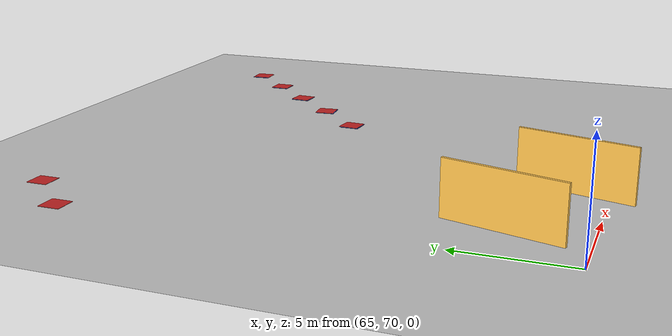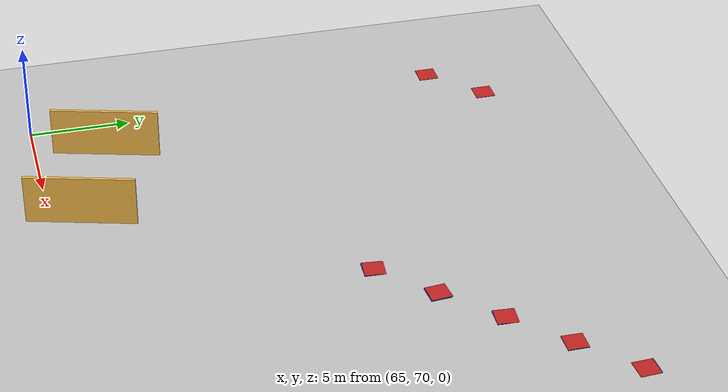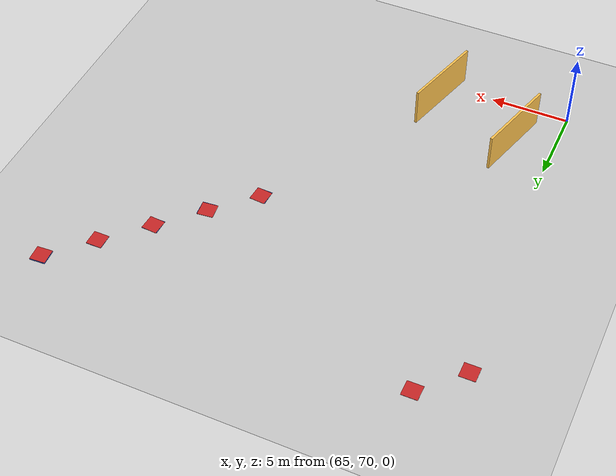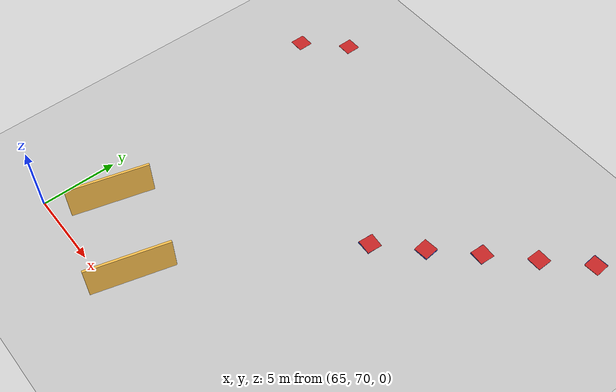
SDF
<sdf version="1.6">
 <world name="default">
  <model name="ground_plane">
   <pose>50 50 0 0 -0 0</pose>
   <static>1</static>
   <link name="link">
    <collision name="collision">
     <geometry><plane><normal>0 0 1</normal><size>100 100</size></plane></geometry>
     <surface><friction><ode><mu>100</mu><mu2>50</mu2></ode></friction></surface>
    </collision>
    <visual name="visual">
     <cast_shadows>0</cast_shadows>
     <geometry><plane><normal>0 0 1</normal><size>100 100</size></plane></geometry>
     <material>
      <script><uri>file://media/materials/scripts/gazebo.material</uri><name>Gazebo/Grey</name></script>
     </material>
    </visual>
   </link>
  </model>
  <model name="T2_0">
   <pose>73.1 71.5 0 0 -0 0</pose>
   <link name="Wall_4">
    <collision name="Wall_4_Collision">
     <geometry><box><size>5.34501 0.15 2.5</size></box></geometry>
     <pose>0 0 1.25 0 -0 0</pose>
    </collision>
    <visual name="Wall_4_Visual">
     <pose>0 0 1.25 0 -0 0</pose>
     <geometry><box><size>5.34501 0.15 2.5</size></box></geometry>
     <material>
      <script><uri>file://media/materials/scripts/gazebo.material</uri><name>Gazebo/Grey</name></script>
      <ambient>1 0.764706 0.305882 1</ambient>
     </material>
    </visual>
    <pose>0 0 0 0 -0 1.29593</pose>
   </link>
   <static>1</static>
  </model>
  <model name="T2_1">
   <pose>67.53 73.5 0 0 -0 0</pose>
   <link name="Wall_4">
    <collision name="Wall_4_Collision">
     <geometry><box><size>5.34501 0.15 2.5</size></box></geometry>
     <pose>0 0 1.25 0 -0 0</pose>
    </collision>
    <visual name="Wall_4_Visual">
     <pose>0 0 1.25 0 -0 0</pose>
     <geometry><box><size>5.34501 0.15 2.5</size></box></geometry>
     <material>
      <script><uri>file://media/materials/scripts/gazebo.material</uri><name>Gazebo/Grey</name></script>
      <ambient>1 0.764706 0.305882 1</ambient>
     </material>
    </visual>
    <pose>0 0 0 0 -0 1.29593</pose>
   </link>
   <static>1</static>
  </model>
  <model name="my_objectg2w1">
   <link name="my_box">
    <inertial>
     <mass>1</mass>
     <inertia><ixx>1</ixx><ixy>0</ixy><ixz>0</ixz><iyy>100</iyy><iyz>0</iyz><izz>1</izz></inertia>
    </inertial>
    <collision name="my_box_collision">
     <pose>0 0 1 0 -0 0</pose>
     <geometry><box><size>1 1 0.02</size></box></geometry>
    </collision>
    <visual name="my_box_visual">
     <pose>0 0 1 0 -0 0</pose>
     <geometry><box><size>1 1 0.02</size></box></geometry>
     <material>
      <script><name>Gazebo/Blue</name><uri>file://media/materials/scripts/gazebo.material</uri></script>
     </material>
    </visual>
   </link>
   <pose>79.9853 83.9873 -0.989999 0 -2e-06 -0.038946</pose>
  </model>
  <model name="my_objectg2w2">
   <link name="my_box">
    <inertial>
     <mass>1</mass>
     <inertia><ixx>1</ixx><ixy>0</ixy><ixz>0</ixz><iyy>100</iyy><iyz>0</iyz><izz>1</izz></inertia>
    </inertial>
    <collision name="my_box_collision">
     <pose>0 0 1 0 -0 0</pose>
     <geometry><box><size>1 1 0.02</size></box></geometry>
    </collision>
    <visual name="my_box_visual">
     <pose>0 0 1 0 -0 0</pose>
     <geometry><box><size>1 1 0.02</size></box></geometry>
     <material>
      <script><name>Gazebo/Blue</name><uri>file://media/materials/scripts/gazebo.material</uri></script>
     </material>
    </visual>
   </link>
   <pose>82.4324 86.3653 -0.99 1e-06 -0 0.078459</pose>
  </model>
  <model name="my_objectg2w3">
   <link name="my_box">
    <inertial>
     <mass>1</mass>
     <inertia><ixx>1</ixx><ixy>0</ixy><ixz>0</ixz><iyy>100</iyy><iyz>0</iyz><izz>1</izz></inertia>
    </inertial>
    <collision name="my_box_collision">
     <pose>0 0 1 0 -0 0</pose>
     <geometry><box><size>1 1 0.02</size></box></geometry>
    </collision>
    <visual name="my_box_visual">
     <pose>0 0 1 0 -0 0</pose>
     <geometry><box><size>1 1 0.02</size></box></geometry>
     <material>
      <script><name>Gazebo/Blue</name><uri>file://media/materials/scripts/gazebo.material</uri></script>
     </material>
    </visual>
   </link>
   <pose>84.7842 88.7896 -0.990038 -5e-06 -1e-06 -0.023385</pose>
  </model>
  <model name="my_objectg2w4">
   <link name="my_box">
    <inertial>
     <mass>1</mass>
     <inertia><ixx>1</ixx><ixy>0</ixy><ixz>0</ixz><iyy>100</iyy><iyz>0</iyz><izz>1</izz></inertia>
    </inertial>
    <collision name="my_box_collision">
     <pose>0 0 1 0 -0 0</pose>
     <geometry><box><size>1 1 0.02</size></box></geometry>
    </collision>
    <visual name="my_box_visual">
     <pose>0 0 1 0 -0 0</pose>
     <geometry><box><size>1 1 0.02</size></box></geometry>
     <material>
      <script><name>Gazebo/Blue</name><uri>file://media/materials/scripts/gazebo.material</uri></script>
     </material>
    </visual>
   </link>
   <pose>87.202 91.1953 -0.99 0 -0 0.006778</pose>
  </model>
  <model name="my_objectg2w5">
   <link name="my_box">
    <inertial>
     <mass>1</mass>
     <inertia><ixx>1</ixx><ixy>0</ixy><ixz>0</ixz><iyy>100</iyy><iyz>0</iyz><izz>1</izz></inertia>
    </inertial>
    <collision name="my_box_collision">
     <pose>0 0 1 0 -0 0</pose>
     <geometry><box><size>1 1 0.02</size></box></geometry>
    </collision>
    <visual name="my_box_visual">
     <pose>0 0 1 0 -0 0</pose>
     <geometry><box><size>1 1 0.02</size></box></geometry>
     <material>
      <script><name>Gazebo/Blue</name><uri>file://media/materials/scripts/gazebo.material</uri></script>
     </material>
    </visual>
   </link>
   <pose>89.5756 93.61 -0.989976 4.8e-05 0 0.056508</pose>
  </model>
  <model name="my_objectg2w1e">
   <link name="my_box">
    <inertial>
     <mass>1</mass>
     <inertia><ixx>1</ixx><ixy>0</ixy><ixz>0</ixz><iyy>100</iyy><iyz>0</iyz><izz>1</izz></inertia>
    </inertial>
    <collision name="my_box_collision">
     <pose>0 0 1 0 -0 0</pose>
     <geometry><box><size>1 1 0.02</size></box></geometry>
    </collision>
    <visual name="my_box_visual">
     <pose>0 0 1 0 -0 0</pose>
     <geometry><box><size>1 1 0.02</size></box></geometry>
     <material>
      <script><name>Gazebo/Red</name><uri>file://media/materials/scripts/gazebo.material</uri></script>
     </material>
    </visual>
   </link>
   <pose>79.9933 84.0178 -0.970033 -5e-06 4e-06 -0.091868</pose>
  </model>
  <model name="my_objectg2w2e">
   <link name="my_box">
    <inertial>
     <mass>1</mass>
     <inertia><ixx>1</ixx><ixy>0</ixy><ixz>0</ixz><iyy>100</iyy><iyz>0</iyz><izz>1</izz></inertia>
    </inertial>
    <collision name="my_box_collision">
     <pose>0 0 1 0 -0 0</pose>
     <geometry><box><size>1 1 0.02</size></box></geometry>
    </collision>
    <visual name="my_box_visual">
     <pose>0 0 1 0 -0 0</pose>
     <geometry><box><size>1 1 0.02</size></box></geometry>
     <material>
      <script><name>Gazebo/Red</name><uri>file://media/materials/scripts/gazebo.material</uri></script>
     </material>
    </visual>
   </link>
   <pose>82.3986 86.3992 -0.969999 5e-06 -1e-06 0.103191</pose>
  </model>
  <model name="my_objectg2w3e">
   <link name="my_box">
    <inertial>
     <mass>1</mass>
     <inertia><ixx>1</ixx><ixy>0</ixy><ixz>0</ixz><iyy>100</iyy><iyz>0</iyz><izz>1</izz></inertia>
    </inertial>
    <collision name="my_box_collision">
     <pose>0 0 1 0 -0 0</pose>
     <geometry><box><size>1 1 0.02</size></box></geometry>
    </collision>
    <visual name="my_box_visual">
     <pose>0 0 1 0 -0 0</pose>
     <geometry><box><size>1 1 0.02</size></box></geometry>
     <material>
      <script><name>Gazebo/Red</name><uri>file://media/materials/scripts/gazebo.material</uri></script>
     </material>
    </visual>
   </link>
   <pose>84.7941 88.8067 -0.970062 -3.3e-05 1e-06 -0.076301</pose>
  </model>
  <model name="my_objectg2w4e">
   <link name="my_box">
    <inertial>
     <mass>1</mass>
     <inertia><ixx>1</ixx><ixy>0</ixy><ixz>0</ixz><iyy>100</iyy><iyz>0</iyz><izz>1</izz></inertia>
    </inertial>
    <collision name="my_box_collision">
     <pose>0 0 1 0 -0 0</pose>
     <geometry><box><size>1 1 0.02</size></box></geometry>
    </collision>
    <visual name="my_box_visual">
     <pose>0 0 1 0 -0 0</pose>
     <geometry><box><size>1 1 0.02</size></box></geometry>
     <material>
      <script><name>Gazebo/Red</name><uri>file://media/materials/scripts/gazebo.material</uri></script>
     </material>
    </visual>
   </link>
   <pose>87.2004 91.1972 -0.970042 2.7e-05 2e-06 -0.007158</pose>
  </model>
  <model name="my_objectg2w5e">
   <link name="my_box">
    <inertial>
     <mass>1</mass>
     <inertia><ixx>1</ixx><ixy>0</ixy><ixz>0</ixz><iyy>100</iyy><iyz>0</iyz><izz>1</izz></inertia>
    </inertial>
    <collision name="my_box_collision">
     <pose>0 0 1 0 -0 0</pose>
     <geometry><box><size>1 1 0.02</size></box></geometry>
    </collision>
    <visual name="my_box_visual">
     <pose>0 0 1 0 -0 0</pose>
     <geometry><box><size>1 1 0.02</size></box></geometry>
     <material>
      <script><name>Gazebo/Red</name><uri>file://media/materials/scripts/gazebo.material</uri></script>
     </material>
    </visual>
   </link>
   <pose>89.6071 93.572 -0.969985 3.3e-05 -0 0.062695</pose>
  </model>
  <model name="my_objectg3w4e">
   <link name="my_box">
    <inertial>
     <mass>1</mass>
     <inertia><ixx>1</ixx><ixy>0</ixy><ixz>0</ixz><iyy>100</iyy><iyz>0</iyz><izz>1</izz></inertia>
    </inertial>
    <collision name="my_box_collision">
     <pose>0 0 1 0 -0 0</pose>
     <geometry><box><size>1 1 0.02</size></box></geometry>
    </collision>
    <visual name="my_box_visual">
     <pose>0 0 1 0 -0 0</pose>
     <geometry><box><size>1 1 0.02</size></box></geometry>
     <material>
      <script><name>Gazebo/Red</name><uri>file://media/materials/scripts/gazebo.material</uri></script>
     </material>
    </visual>
   </link>
   <pose>63.9997 91.2 -0.990001 -2e-06 0 0.001186</pose>
  </model>
  <model name="my_objectg3w5e">
   <link name="my_box">
    <inertial>
     <mass>1</mass>
     <inertia><ixx>1</ixx><ixy>0</ixy><ixz>0</ixz><iyy>100</iyy><iyz>0</iyz><izz>1</izz></inertia>
    </inertial>
    <collision name="my_box_collision">
     <pose>0 0 1 0 -0 0</pose>
     <geometry><box><size>1 1 0.02</size></box></geometry>
    </collision>
    <visual name="my_box_visual">
     <pose>0 0 1 0 -0 0</pose>
     <geometry><box><size>1 1 0.02</size></box></geometry>
     <material>
      <script><name>Gazebo/Red</name><uri>file://media/materials/scripts/gazebo.material</uri></script>
     </material>
    </visual>
   </link>
   <pose>66.4 93.6 -0.990001 2e-06 -0 0.001817</pose>
  </model>
 </world>
</sdf>
